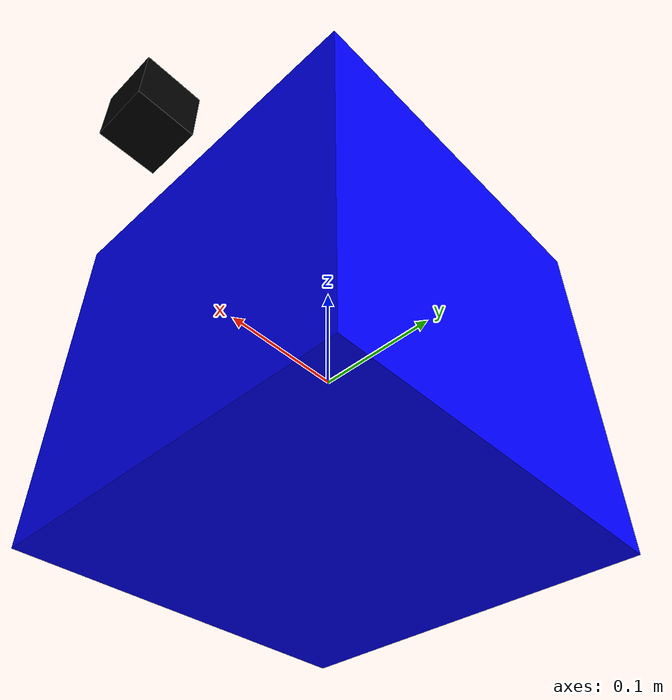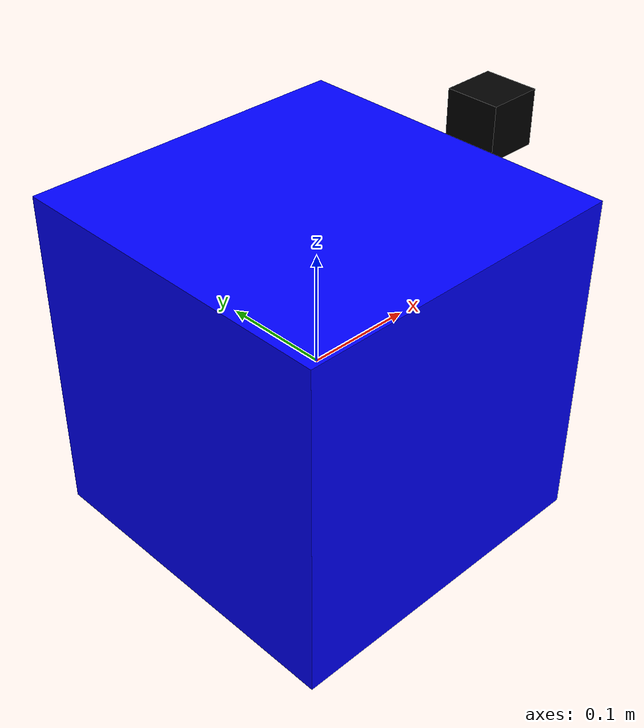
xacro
<?xml version="1.0"?>
<robot name="my_camera" xmlns:xacro="http://ros.org/wiki/xacro">

  <!-- Ana Gövde (Küp) -->
  <link name="base_link">
    <visual>
      <geometry>
        <box size="0.3 0.3 0.3"/> <!-- Boyut büyütüldü -->
      </geometry>
      <material name="blue">
        <color rgba="0 0 1 1"/> <!-- Mavi renk -->
      </material>
    </visual>
    <collision>
      <geometry>
        <box size="0.3 0.3 0.3"/>
      </geometry>
    </collision>
    <inertial>
      <mass value="1.0"/>
      <inertia
        ixx="0.001" ixy="0" ixz="0"
        iyy="0.001" iyz="0"
        izz="0.001"/>
    </inertial>
  </link>

  <!-- Kamera -->
  <link name="camera_link">
    <visual>
      <geometry>
        <box size="0.05 0.05 0.05"/> <!-- Kamera görseli -->
      </geometry>
      <material name="black">
        <color rgba="0 0 0 1"/> <!-- Siyah renk -->
      </material>
    </visual>
    <inertial>
      <mass value="0.01"/>
      <inertia
        ixx="0.00001" ixy="0" ixz="0"
        iyy="0.00001" iyz="0"
        izz="0.00001"/>
    </inertial>
  </link>

  <!-- Kamera Eklentisi (Gazebo Plugin) -->
  <gazebo reference="camera_link">
    <sensor type="camera" name="camera_sensor">
      <camera>
        <horizontal_fov>1.0472</horizontal_fov>
        <image>
          <width>640</width>
          <height>480</height>
          <format>R8G8B8</format>
        </image>
      </camera>
      <plugin name="camera_plugin" filename="libgazebo_ros_camera.so">
        <ros>
          <namespace>/</namespace>
        </ros>
        <camera_name>my_camera</camera_name>
        <frame_name>camera_link</frame_name>
        <hack_baseline>0.07</hack_baseline>
      </plugin>
    </sensor>
  </gazebo>

  <!-- Joint'ler -->

  <!-- Kamera tutucusuna kamerayı bağla -->
  <joint name="camera_joint" type="fixed">
    <parent link="base_link"/>
    <child link="camera_link"/>
    <origin xyz="0.2 0 0.15" rpy="0 0 0"/> <!-- Silindirin ucuna yerleşim -->
  </joint>

</robot>
